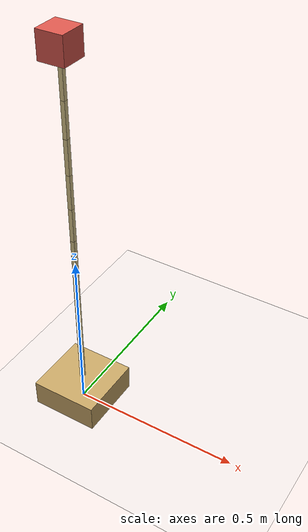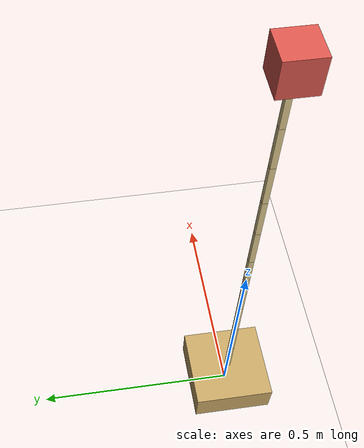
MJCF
<mujoco model="beam_buckling">
  <compiler angle="radian" coordinate="local" autolimits="true"/>
  <option timestep="0.001" gravity="0 0 -9.81" integrator="implicitfast"/>

  <visual>
    <headlight diffuse="0 0 0" ambient="0.50 0.48 0.55" specular="0 0 0"/>
    <rgba haze="0.94 0.91 0.90 1"/>
    <global azimuth="120" elevation="-15" offwidth="1920" offheight="1080" fovy="38"/>
    <quality shadowsize="8192" offsamples="8"/>
    <map shadowclip="6" shadowscale="0.7"/>
  </visual>

  <asset>
    <texture type="skybox" builtin="flat"
             rgb1="0.74 0.68 0.86" rgb2="0.74 0.68 0.86"
             width="512" height="512" mark="none" markrgb="0 0 0"/>
    <material name="floor_mat" rgba="0.94 0.91 0.90 1" specular="0" shininess="0"/>
    <material name="wood"      rgba="0.93 0.82 0.58 1" specular="0.1" shininess="0.1"/>
    <material name="wood_dark" rgba="0.78 0.65 0.40 1" specular="0.1" shininess="0.1"/>
    <material name="column"    rgba="0.86 0.78 0.55 1" specular="0.30" shininess="0.4"/>
    <material name="payload"   rgba="0.86 0.34 0.30 1" specular="0.35" shininess="0.4"/>
  </asset>

  <worldbody>
    <light pos="0 0 12" dir="-0.30 0.55 -1" directional="true" castshadow="true"
           diffuse="0.85 0.82 0.78" specular="0.15 0.15 0.15"/>
    <light pos="0 0 8" dir="0.40 -0.30 -1" directional="true" castshadow="false"
           diffuse="0.28 0.28 0.34" specular="0 0 0"/>

    <geom name="floor" type="plane" size="40 40 0.1" material="floor_mat"/>

    <!-- Fixed base block (the column is pinned to its top face). -->
    <geom type="box" pos="0 0 0.0400"
          size="0.1000 0.1000 0.0400"
          material="wood_dark"/>

    <body name="seg0_body" pos="0 0 0.0800">
      <joint name="h0" type="hinge" axis="0 1 0" stiffness="26.0" damping="0.3"/>
      <geom name="seg0" type="box" pos="0 0 0.0500" size="0.0060 0.0060 0.0500" material="column" mass="0.025"/>
      <body name="seg1_body" pos="0 0 0.1000">
        <joint name="h1" type="hinge" axis="0 1 0" stiffness="26.0" damping="0.3"/>
        <geom name="seg1" type="box" pos="0 0 0.0500" size="0.0060 0.0060 0.0500" material="column" mass="0.025"/>
        <body name="seg2_body" pos="0 0 0.1000">
          <joint name="h2" type="hinge" axis="0 1 0" stiffness="26.0" damping="0.3"/>
          <geom name="seg2" type="box" pos="0 0 0.0500" size="0.0060 0.0060 0.0500" material="column" mass="0.025"/>
          <body name="seg3_body" pos="0 0 0.1000">
            <joint name="h3" type="hinge" axis="0 1 0" stiffness="26.0" damping="0.3"/>
            <geom name="seg3" type="box" pos="0 0 0.0500" size="0.0060 0.0060 0.0500" material="column" mass="0.025"/>
            <body name="seg4_body" pos="0 0 0.1000">
              <joint name="h4" type="hinge" axis="0 1 0" stiffness="26.0" damping="0.3"/>
              <geom name="seg4" type="box" pos="0 0 0.0500" size="0.0060 0.0060 0.0500" material="column" mass="0.025"/>
              <body name="seg5_body" pos="0 0 0.1000">
                <joint name="h5" type="hinge" axis="0 1 0" stiffness="26.0" damping="0.3"/>
                <geom name="seg5" type="box" pos="0 0 0.0500" size="0.0060 0.0060 0.0500" material="column" mass="0.025"/>
                <body name="seg6_body" pos="0 0 0.1000">
                  <joint name="h6" type="hinge" axis="0 1 0" stiffness="26.0" damping="0.3"/>
                  <geom name="seg6" type="box" pos="0 0 0.0500" size="0.0060 0.0060 0.0500" material="column" mass="0.025"/>
                  <body name="seg7_body" pos="0 0 0.1000">
                    <joint name="h7" type="hinge" axis="0 1 0" stiffness="26.0" damping="0.3"/>
                    <geom name="seg7" type="box" pos="0 0 0.0500" size="0.0060 0.0060 0.0500" material="column" mass="0.025"/>
                    <body name="seg8_body" pos="0 0 0.1000">
                      <joint name="h8" type="hinge" axis="0 1 0" stiffness="26.0" damping="0.3"/>
                      <geom name="seg8" type="box" pos="0 0 0.0500" size="0.0060 0.0060 0.0500" material="column" mass="0.025"/>
                      <body name="seg9_body" pos="0 0 0.1000">
                        <joint name="h9" type="hinge" axis="0 1 0" stiffness="26.0" damping="0.3"/>
                        <geom name="seg9" type="box" pos="0 0 0.0500" size="0.0060 0.0060 0.0500" material="column" mass="0.025"/>
                        <geom name="top_mass" type="box" pos="0 0 0.1375" size="0.0375 0.0375 0.0375" material="payload" mass="0.55"/>
                      </body>
                    </body>
                  </body>
                </body>
              </body>
            </body>
          </body>
        </body>
      </body>
    </body>

    <!-- Side view from -y with slight 3/4 tilt, pulled back so the FULL
         column (z 0 to ~1.15) and the bow direction (+x up to ~0.7 m) all
         stay inside the frame at fovy=40. -->
    <camera name="cam" pos="0.70 -2.80 0.75" fovy="40"
            xyaxes="0.985 0.158 0   -0.011 0.069 0.998"/>
  </worldbody>
</mujoco>
